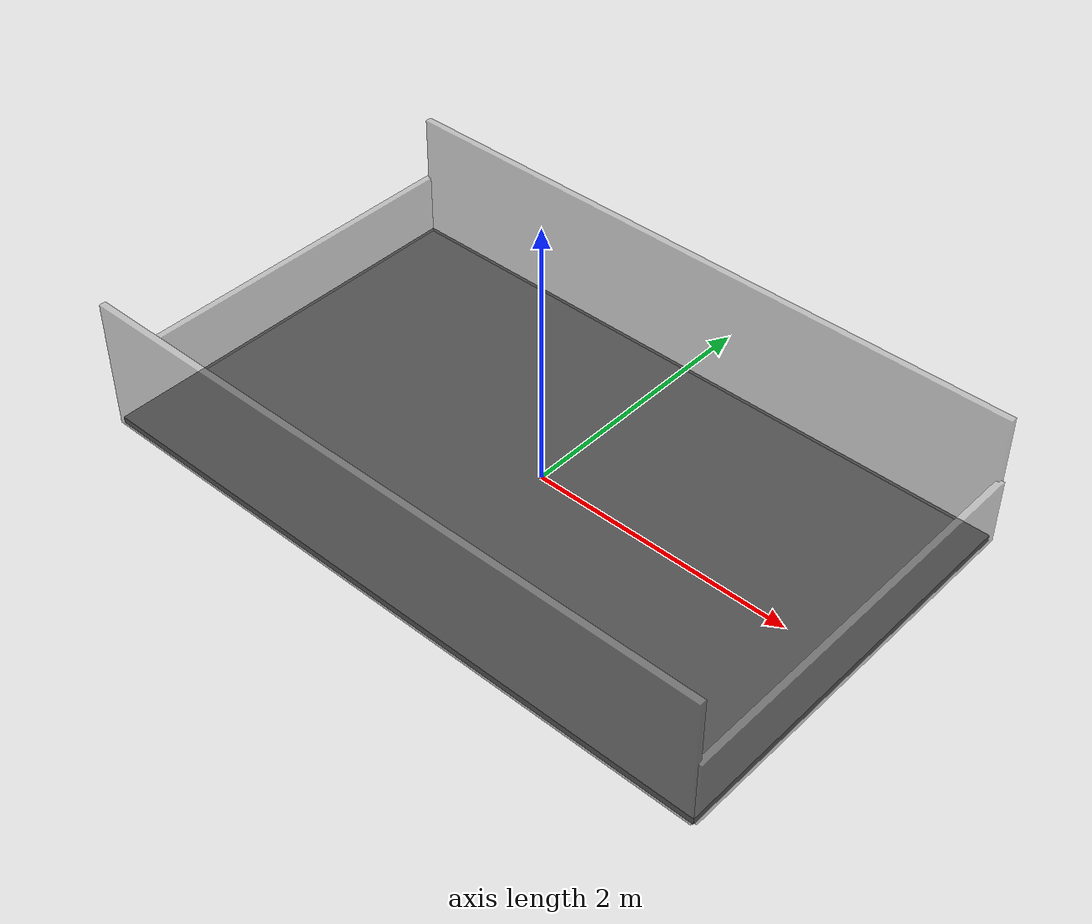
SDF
<?xml version="1.0" ?>
<sdf version="1.5">
  <model name="debrisfence">
    <static>true</static>
    <link name="link">

      <collision name="surface">
        <pose>0 0 0 0 0 0</pose>
        <geometry> <box> <size>5.0 3.0 0.05</size> </box> </geometry>
        <surface> <friction> <ode> <mu>0.6</mu> <mu2>0.6</mu2> </ode> </friction> </surface>
      </collision>
      <visual name="visual1">
        <pose>0 0 0 0 0 0</pose>
        <geometry> <box> <size>5.0 3.0 0.05</size> </box> </geometry>
        <material>
	  <script> <uri>file://media/materials/scripts/gazebo.material</uri>
            <name>Gazebo/DarkGrey</name>
          </script>
        </material>
      </visual>
      <inertial>
        <mass>10.0</mass>
        <ixx>0.001</ixx> <ixy>0.0</ixy> <ixz>0.0</ixz>
	<iyy>0.001</iyy> <iyz>0.0</iyz> <izz>0.001</izz>
      </inertial>

      <collision name="front_fence">
        <pose>0 -1.5 0.5 0 0 0</pose>
        <geometry> <box> <size>5.0 0.05 1.01</size> </box> </geometry>
      </collision>
      <visual name="front_fence">
        <pose>0 -1.5 0.5 0 0 0</pose>
        <geometry> <box> <size>5.0 0.05 1.01</size> </box> </geometry>
        <material>
          <script> <uri>file://media/materials/scripts/gazebo.material</uri>
            <name>Gazebo/GreyTransparent</name>
          </script>
        </material>
      </visual>

      <collision name="back_fence">
        <pose>0 1.5 0.5 0 0 0</pose>
        <geometry> <box> <size>5.0 0.05 1.01</size> </box> </geometry>
      </collision>
      <visual name="back_fence">
        <pose>0 1.5 0.5 0 0 0</pose>
        <geometry> <box> <size>5.0 0.05 1.01</size> </box> </geometry>
        <material>
          <script> <uri>file://media/materials/scripts/gazebo.material</uri>
            <name>Gazebo/GreyTransparent</name>
          </script>
        </material>
      </visual>

      <collision name="left_fence">
        <pose>2.5 0 0.25 0 0 0</pose>
        <geometry> <box> <size>0.05 3.0 0.51</size> </box> </geometry>
      </collision>
      <visual name="left_fence">
        <pose>2.5 0 0.25 0 0 0</pose>
        <geometry> <box> <size>0.05 3.0 0.51</size> </box> </geometry>
        <material>
          <script> <uri>file://media/materials/scripts/gazebo.material</uri>
            <name>Gazebo/GreyTransparent</name>
          </script>
        </material>
      </visual>

      <collision name="right_fence">
        <pose>-2.5 0 0.25 0 0 0</pose>
        <geometry> <box> <size>0.05 3.0 0.51</size> </box> </geometry>
      </collision>
      <visual name="right_fence">
        <pose>-2.5 0 0.25 0 0 0</pose>
        <geometry> <box> <size>0.05 3.0 0.51</size> </box> </geometry>
        <material>
          <script> <uri>file://media/materials/scripts/gazebo.material</uri>
            <name>Gazebo/GreyTransparent</name>
          </script>
        </material>
      </visual>

    </link>
  </model>
</sdf>
